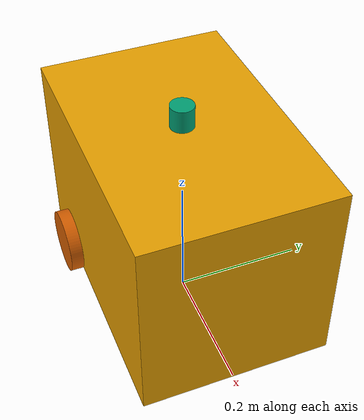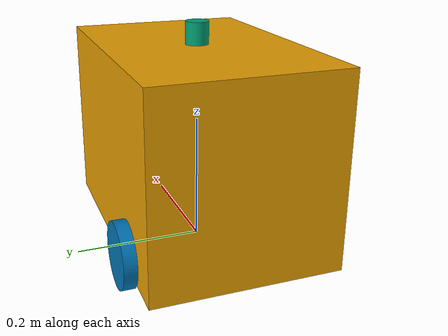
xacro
<?xml version="1.0"?>
<!-- Basic differential drive mobile base -->
<robot xmlns:xacro="http://www.ros.org/wiki/xacro" name="cargo_bot">
<xacro:include filename="inertial_macros.xacro"/>
<xacro:include filename="chassis.xacro"/>
<xacro:include filename="sensors.xacro"/>
<xacro:include filename="wheels.xacro"/>
</robot>

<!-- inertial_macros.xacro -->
<robot xmlns:xacro="http://www.ros.org/wiki/xacro">
<xacro:macro name="inertial_box" params="mass x y z">
  <inertial>
    <mass value="${mass}"/>
    <inertia ixx="${(1/12)*mass*(y*y+z*z)}" ixy="0.0" ixz="0.0"
             iyy="${(1/12)*mass*(x*x+z*z)}" iyz="0.0"
             izz="${(1/12)*mass*(x*x+y*y)}"/>
  </inertial>
</xacro:macro>

<xacro:macro name="inertial_cylinder" params="mass length radius">
  <inertial>
    <mass value="${mass}"/>
    <inertia ixx="${(1/12)*mass*(3*radius*radius+length*length)}" ixy="0.0" ixz="0.0"
             iyy="${(1/12)*mass*(3*radius*radius+length*length)}" iyz="0.0"
             izz="${(1/2)*mass*radius*radius}"/>
  </inertial>
</xacro:macro>

<xacro:macro name="inertial_sphere" params="mass radius">
  <inertial>
    <mass value="${mass}"/>
    <inertia ixx="${(2/5)*mass*radius*radius}" ixy="0.0" ixz="0.0"
             iyy="${(2/5)*mass*radius*radius}" iyz="0.0"
             izz="${(2/5)*mass*radius*radius}"/>
  </inertial>
</xacro:macro>
</robot>

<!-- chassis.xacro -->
<robot xmlns:xacro="http://www.ros.org/wiki/xacro">
  <xacro:property name="base_x" value="0.43"/>
  <xacro:property name="base_y" value="0.29"/>
  <xacro:property name="base_z" value="0.3"/>

    <link name="base_link">
      <visual>
        <origin xyz="0 0 0" rpy="0 0 0"/>
        <geometry>
        <mesh filename="package://cargo_bot_description/meshes/visual/base_link.stl"
        scale="0.001 0.001 0.001"/>
        </geometry>
      </visual>
      <collision>
        <origin xyz="0 0 0" rpy="0 0 0"/>
        <geometry>
        <mesh filename="package://cargo_bot_description/meshes/collision/base_link.stl"
        scale="0.001 0.001 0.001"/>
        </geometry>
      </collision>
      <xacro:inertial_box mass="2.5" x="${base_x}" y="${base_y}" z="${base_z}"/>  <!--  cambiar valores -->
    </link>
    <link name="base_footprint"/>
        <joint name="base_footprint_joint" type="fixed">
        <parent link="base_footprint"/>
        <child link="base_link"/>
        <origin xyz="0 0 0.02" rpy="0 0 0"/>
        </joint>
  </robot>

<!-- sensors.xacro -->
<robot xmlns:xacro="http://www.ros.org/wiki/xacro">
    <link name="lidar_link">
        <visual>
        <geometry>
            <mesh filename="package://cargo_bot_description/meshes/visual/lidar.stl"
                scale="0.001 0.001 0.001"/>
        </geometry>
        </visual>
        <collision>
        <geometry>
            <mesh filename="package://cargo_bot_description/meshes/collision/lidar.stl"
                scale="0.001 0.001 0.001"/>
        </geometry>
        </collision>
        <xacro:inertial_cylinder mass="0.045" length="0.035" radius="0.035"/>
    </link>

    <joint name="lidar_joint" type="fixed">
        <parent link="base_link"/>
        <child link="lidar_link"/>
        <origin xyz="0 0 0.3" rpy="0 0 0"/>
    </joint>

    <sensor name="rplidar" type="ray" update_rate="5.5" isaac_sim_config="Slamtec_RPLIDAR_S2E">
        <parent link="lidar_link"/>
        <origin xyz="0 0 0" rpy="0 0 0"/>
    </sensor>

    <link name="imu_link"/>

    <joint name="imu_joint" type="fixed">
        <parent link="base_link"/>
        <child link="imu_link"/>
        <origin xyz="0 0 0" rpy="0 0 0"/>
    </joint>

</robot>

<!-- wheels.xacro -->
<robot xmlns:xacro="http://www.ros.org/wiki/xacro">
<xacro:property name="wheel_radius" value="0.1"/>
<xacro:property name="wheel_mass"   value="0.2"/>
<xacro:property name="wheel_width"  value="0.02"/>
<xacro:property name="wheel_separation" value="0.29"/>
<xacro:macro name="wheel" params="prefix y_offset">
  <link name="${prefix}_wheel_link">
    <visual>
      <geometry>
        <mesh filename="package://cargo_bot_description/meshes/visual/${prefix}_wheel.stl"
              scale="0.001 0.001 0.001"/>
      </geometry>
    </visual>
    <collision>
      <geometry>
        <mesh filename="package://cargo_bot_description/meshes/collision/${prefix}_wheel.stl"
              scale="0.001 0.001 0.001"/>
      </geometry>
    </collision>
    <xacro:inertial_cylinder mass="${wheel_mass}"
                              length="${wheel_width}" radius="${wheel_radius}"/>
  </link>

  <joint name="${prefix}_wheel_joint" type="continuous">
    <parent link="base_link"/>
    <child link="${prefix}_wheel_link"/>
    <origin xyz="-0.115 ${y_offset} 0.03" rpy="${pi/2} 0  0"/>
    <!-- axis inverted (was 0 0 1) so positive cmd_vel.linear.x = forward.
         Avoids needing a Negate node downstream of DifferentialController. -->
    <axis xyz="0 0 -1"/>
  </joint>
  </xacro:macro>

<xacro:wheel prefix="left"  y_offset="${wheel_separation/2 + wheel_width}"/>
<xacro:wheel prefix="right" y_offset="${-wheel_separation/2}"/>
    <link name="caster_wheel_link">
    <visual>
        <geometry>
        <mesh filename="package://cargo_bot_description/meshes/visual/caster_wheel.stl"
                scale="0.001 0.001 0.001"/>
        </geometry>
    </visual>
    <collision>
        <geometry>
        <mesh filename="package://cargo_bot_description/meshes/collision/caster_wheel.stl"
                scale="0.001 0.001 0.001"/>
        </geometry>
    </collision>
    <xacro:inertial_sphere mass="0.1" radius="0.02"/>
    </link>
    <joint name="caster_wheel_joint" type="fixed">
        <parent link="base_link"/>
        <child link="caster_wheel_link"/>
        <origin xyz="0.15 0 0" rpy="${-pi/2} 0 0"/>
        </joint>
</robot>
